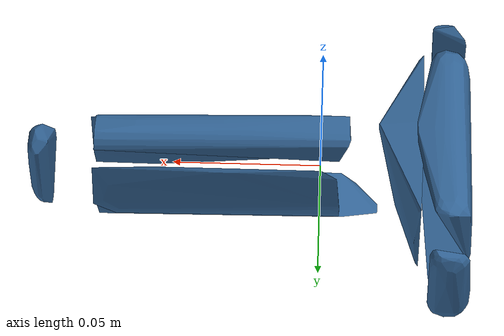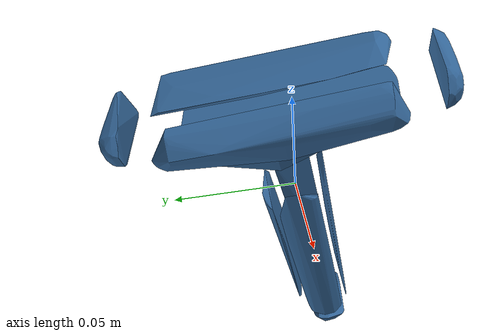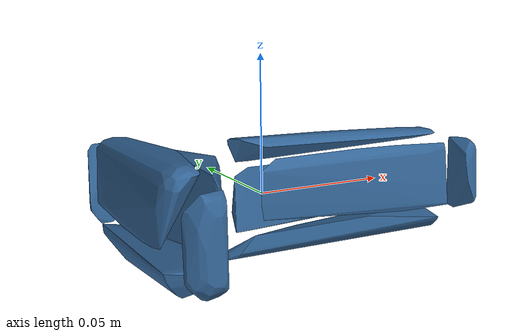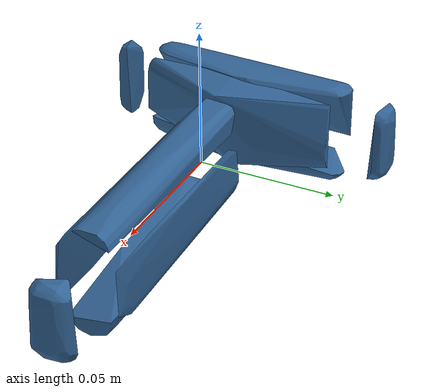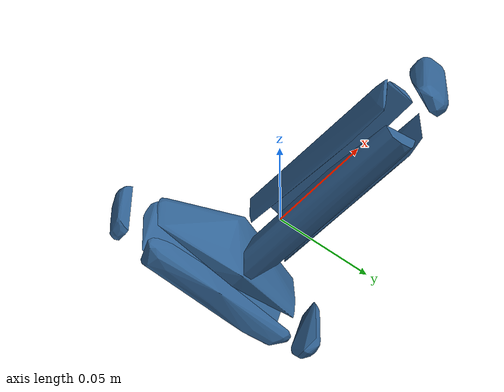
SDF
<?xml version='1.0' encoding='UTF-8'?>
<!-- This SDF was autogenerated by obj_to_drake_sdf.py -->
<sdf version="1.7">
  <model name="T_small_video">
    <link name="T_small_video">
      <inertial>
        <pose>0 0 0 0 0 0</pose>
        <mass>0.05</mass>
        <inertia>
          <ixx>3.0492549e-05</ixx>
          <iyy>0.00011352692</iyy>
          <izz>0.00013005626</izz>
          <ixy>-7.9214623e-07</ixy>
          <ixz>2.6579489e-06</ixz>
          <iyz>6.0026075e-07</iyz>
        </inertia>
      </inertial>
      <visual name="convex_0">
        <pose>0 0 0 0 0 0</pose>
        <geometry>
          <mesh>
            <uri>T_small_video_convex_0.obj</uri>
          </mesh>
        </geometry>
        <material>
          <diffuse>0.19607843137254902 0.39215686274509803 0.5882352941176471 1</diffuse>
        </material>
      </visual>
      <collision name="convex_0_volume">
        <pose>0 0 0 0 0 0</pose>
        <geometry>
          <mesh>
            <uri>T_small_video_convex_0.obj</uri>
          </mesh>
        </geometry>
        <drake:proximity_properties xmlns:drake="uri:drake">
          <drake:compliant_hydroelastic/>
          <drake:hydroelastic_modulus> 3.0e7 </drake:hydroelastic_modulus>
          <drake:mesh_resolution_hint> 0.02 </drake:mesh_resolution_hint>
          <drake:hunt_crossley_dissipation>10</drake:hunt_crossley_dissipation>
          <drake:mu_dynamic>0.3</drake:mu_dynamic>
        </drake:proximity_properties>
      </collision>
      <visual name="convex_1">
        <pose>0 0 0 0 0 0</pose>
        <geometry>
          <mesh>
            <uri>T_small_video_convex_1.obj</uri>
          </mesh>
        </geometry>
        <material>
          <diffuse>0.19607843137254902 0.39215686274509803 0.5882352941176471 1</diffuse>
        </material>
      </visual>
      <collision name="convex_1_volume">
        <pose>0 0 0 0 0 0</pose>
        <geometry>
          <mesh>
            <uri>T_small_video_convex_1.obj</uri>
          </mesh>
        </geometry>
        <drake:proximity_properties xmlns:drake="uri:drake">
          <drake:compliant_hydroelastic/>
          <drake:hydroelastic_modulus> 3.0e7 </drake:hydroelastic_modulus>
          <drake:mesh_resolution_hint> 0.02 </drake:mesh_resolution_hint>
          <drake:hunt_crossley_dissipation>10</drake:hunt_crossley_dissipation>
          <drake:mu_dynamic>0.3</drake:mu_dynamic>
        </drake:proximity_properties>
      </collision>
      <visual name="convex_2">
        <pose>0 0 0 0 0 0</pose>
        <geometry>
          <mesh>
            <uri>T_small_video_convex_2.obj</uri>
          </mesh>
        </geometry>
        <material>
          <diffuse>0.19607843137254902 0.39215686274509803 0.5882352941176471 1</diffuse>
        </material>
      </visual>
      <collision name="convex_2_volume">
        <pose>0 0 0 0 0 0</pose>
        <geometry>
          <mesh>
            <uri>T_small_video_convex_2.obj</uri>
          </mesh>
        </geometry>
        <drake:proximity_properties xmlns:drake="uri:drake">
          <drake:compliant_hydroelastic/>
          <drake:hydroelastic_modulus> 3.0e7 </drake:hydroelastic_modulus>
          <drake:mesh_resolution_hint> 0.02 </drake:mesh_resolution_hint>
          <drake:hunt_crossley_dissipation>10</drake:hunt_crossley_dissipation>
          <drake:mu_dynamic>0.3</drake:mu_dynamic>
        </drake:proximity_properties>
      </collision>
      <visual name="convex_3">
        <pose>0 0 0 0 0 0</pose>
        <geometry>
          <mesh>
            <uri>T_small_video_convex_3.obj</uri>
          </mesh>
        </geometry>
        <material>
          <diffuse>0.19607843137254902 0.39215686274509803 0.5882352941176471 1</diffuse>
        </material>
      </visual>
      <collision name="convex_3_volume">
        <pose>0 0 0 0 0 0</pose>
        <geometry>
          <mesh>
            <uri>T_small_video_convex_3.obj</uri>
          </mesh>
        </geometry>
        <drake:proximity_properties xmlns:drake="uri:drake">
          <drake:compliant_hydroelastic/>
          <drake:hydroelastic_modulus> 3.0e7 </drake:hydroelastic_modulus>
          <drake:mesh_resolution_hint> 0.02 </drake:mesh_resolution_hint>
          <drake:hunt_crossley_dissipation>10</drake:hunt_crossley_dissipation>
          <drake:mu_dynamic>0.3</drake:mu_dynamic>
        </drake:proximity_properties>
      </collision>
      <visual name="convex_4">
        <pose>0 0 0 0 0 0</pose>
        <geometry>
          <mesh>
            <uri>T_small_video_convex_4.obj</uri>
          </mesh>
        </geometry>
        <material>
          <diffuse>0.19607843137254902 0.39215686274509803 0.5882352941176471 1</diffuse>
        </material>
      </visual>
      <collision name="convex_4_volume">
        <pose>0 0 0 0 0 0</pose>
        <geometry>
          <mesh>
            <uri>T_small_video_convex_4.obj</uri>
          </mesh>
        </geometry>
        <drake:proximity_properties xmlns:drake="uri:drake">
          <drake:compliant_hydroelastic/>
          <drake:hydroelastic_modulus> 3.0e7 </drake:hydroelastic_modulus>
          <drake:mesh_resolution_hint> 0.02 </drake:mesh_resolution_hint>
          <drake:hunt_crossley_dissipation>10</drake:hunt_crossley_dissipation>
          <drake:mu_dynamic>0.3</drake:mu_dynamic>
        </drake:proximity_properties>
      </collision>
      <visual name="convex_5">
        <pose>0 0 0 0 0 0</pose>
        <geometry>
          <mesh>
            <uri>T_small_video_convex_5.obj</uri>
          </mesh>
        </geometry>
        <material>
          <diffuse>0.19607843137254902 0.39215686274509803 0.5882352941176471 1</diffuse>
        </material>
      </visual>
      <collision name="convex_5_volume">
        <pose>0 0 0 0 0 0</pose>
        <geometry>
          <mesh>
            <uri>T_small_video_convex_5.obj</uri>
          </mesh>
        </geometry>
        <drake:proximity_properties xmlns:drake="uri:drake">
          <drake:compliant_hydroelastic/>
          <drake:hydroelastic_modulus> 3.0e7 </drake:hydroelastic_modulus>
          <drake:mesh_resolution_hint> 0.02 </drake:mesh_resolution_hint>
          <drake:hunt_crossley_dissipation>10</drake:hunt_crossley_dissipation>
          <drake:mu_dynamic>0.3</drake:mu_dynamic>
        </drake:proximity_properties>
      </collision>
      <visual name="convex_6">
        <pose>0 0 0 0 0 0</pose>
        <geometry>
          <mesh>
            <uri>T_small_video_convex_6.obj</uri>
          </mesh>
        </geometry>
        <material>
          <diffuse>0.19607843137254902 0.39215686274509803 0.5882352941176471 1</diffuse>
        </material>
      </visual>
      <collision name="convex_6_volume">
        <pose>0 0 0 0 0 0</pose>
        <geometry>
          <mesh>
            <uri>T_small_video_convex_6.obj</uri>
          </mesh>
        </geometry>
        <drake:proximity_properties xmlns:drake="uri:drake">
          <drake:compliant_hydroelastic/>
          <drake:hydroelastic_modulus> 3.0e7 </drake:hydroelastic_modulus>
          <drake:mesh_resolution_hint> 0.02 </drake:mesh_resolution_hint>
          <drake:hunt_crossley_dissipation>10</drake:hunt_crossley_dissipation>
          <drake:mu_dynamic>0.3</drake:mu_dynamic>
        </drake:proximity_properties>
      </collision>
      <visual name="convex_7">
        <pose>0 0 0 0 0 0</pose>
        <geometry>
          <mesh>
            <uri>T_small_video_convex_7.obj</uri>
          </mesh>
        </geometry>
        <material>
          <diffuse>0.19607843137254902 0.39215686274509803 0.5882352941176471 1</diffuse>
        </material>
      </visual>
      <collision name="convex_7_volume">
        <pose>0 0 0 0 0 0</pose>
        <geometry>
          <mesh>
            <uri>T_small_video_convex_7.obj</uri>
          </mesh>
        </geometry>
        <drake:proximity_properties xmlns:drake="uri:drake">
          <drake:compliant_hydroelastic/>
          <drake:hydroelastic_modulus> 3.0e7 </drake:hydroelastic_modulus>
          <drake:mesh_resolution_hint> 0.02 </drake:mesh_resolution_hint>
          <drake:hunt_crossley_dissipation>10</drake:hunt_crossley_dissipation>
          <drake:mu_dynamic>0.3</drake:mu_dynamic>
        </drake:proximity_properties>
      </collision>
      <visual name="convex_8">
        <pose>0 0 0 0 0 0</pose>
        <geometry>
          <mesh>
            <uri>T_small_video_convex_8.obj</uri>
          </mesh>
        </geometry>
        <material>
          <diffuse>0.19607843137254902 0.39215686274509803 0.5882352941176471 1</diffuse>
        </material>
      </visual>
      <collision name="convex_8_volume">
        <pose>0 0 0 0 0 0</pose>
        <geometry>
          <mesh>
            <uri>T_small_video_convex_8.obj</uri>
          </mesh>
        </geometry>
        <drake:proximity_properties xmlns:drake="uri:drake">
          <drake:compliant_hydroelastic/>
          <drake:hydroelastic_modulus> 3.0e7 </drake:hydroelastic_modulus>
          <drake:mesh_resolution_hint> 0.02 </drake:mesh_resolution_hint>
          <drake:hunt_crossley_dissipation>10</drake:hunt_crossley_dissipation>
          <drake:mu_dynamic>0.3</drake:mu_dynamic>
        </drake:proximity_properties>
      </collision>
      <visual name="convex_9">
        <pose>0 0 0 0 0 0</pose>
        <geometry>
          <mesh>
            <uri>T_small_video_convex_9.obj</uri>
          </mesh>
        </geometry>
        <material>
          <diffuse>0.19607843137254902 0.39215686274509803 0.5882352941176471 1</diffuse>
        </material>
      </visual>
      <collision name="convex_9_volume">
        <pose>0 0 0 0 0 0</pose>
        <geometry>
          <mesh>
            <uri>T_small_video_convex_9.obj</uri>
          </mesh>
        </geometry>
        <drake:proximity_properties xmlns:drake="uri:drake">
          <drake:compliant_hydroelastic/>
          <drake:hydroelastic_modulus> 3.0e7 </drake:hydroelastic_modulus>
          <drake:mesh_resolution_hint> 0.02 </drake:mesh_resolution_hint>
          <drake:hunt_crossley_dissipation>10</drake:hunt_crossley_dissipation>
          <drake:mu_dynamic>0.3</drake:mu_dynamic>
        </drake:proximity_properties>
      </collision>
    </link>
  </model>
</sdf>
